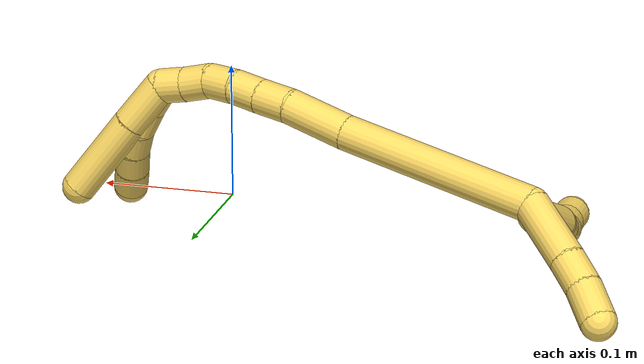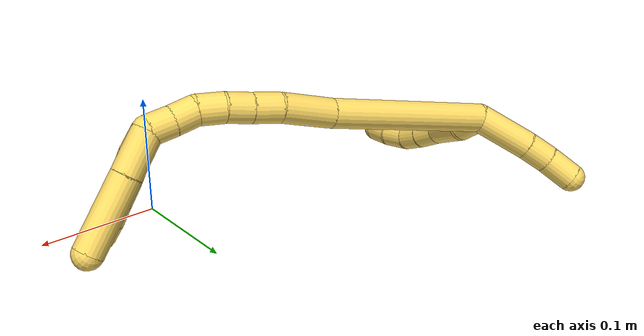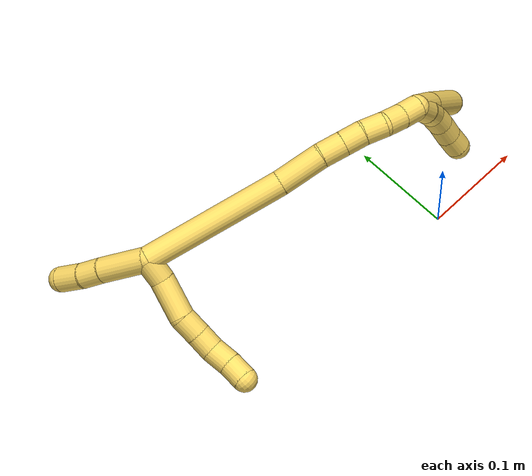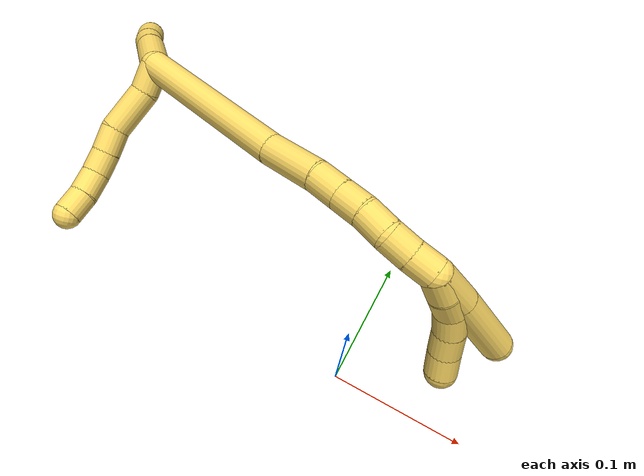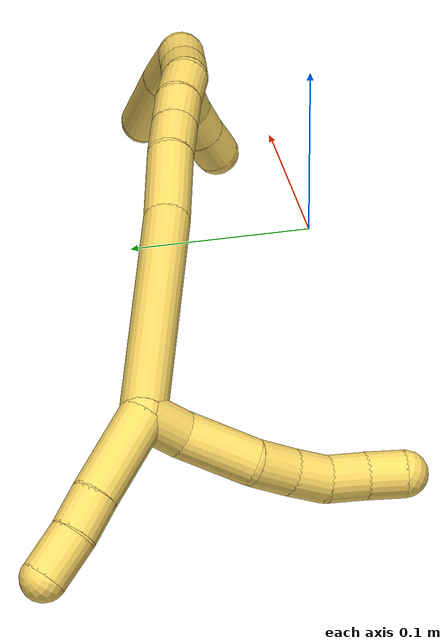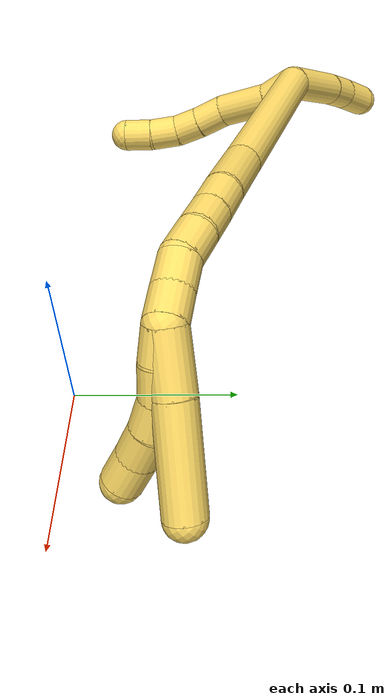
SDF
<sdf version="1.7">
 <world name="default">
  <model name="5">
   <static>0</static>
   <link name="5">
    <collision name="collision-cylinder-e_1_2_8">
     <pose>-0.001639 0.000311 -0.012149 -3.11599 -0.134028 2.76465</pose>
     <geometry><cylinder><radius>0.0125</radius><length>0.024526</length></cylinder></geometry>
     <surface>
      <friction><ode><mu>1.16</mu><mu2>1.16</mu2><slip1>0</slip1><slip2>0</slip2></ode></friction>
      <contact><ode><kp>1e+06</kp><kd>1</kd><max_vel>0</max_vel><min_depth>0.001</min_depth></ode></contact>
     </surface>
    </collision>
    <visual name="visual-cylinder-e_1_2_8">
     <pose>-0.001639 0.000311 -0.012149 -3.11599 -0.134028 2.76465</pose>
     <geometry><cylinder><radius>0.0125</radius><length>0.024526</length></cylinder></geometry>
     <material><ambient>1 0.858824 0.4 1</ambient></material>
    </visual>
    <collision name="collision-cylinder-e_2_8_9">
     <pose>-0.011551 -0.000785 -0.04265 3.06508 -0.422437 -2.78829</pose>
     <geometry><cylinder><radius>0.0125</radius><length>0.040359</length></cylinder></geometry>
     <surface>
      <friction><ode><mu>1.16</mu><mu2>1.16</mu2><slip1>0</slip1><slip2>0</slip2></ode></friction>
      <contact><ode><kp>1e+06</kp><kd>1</kd><max_vel>0</max_vel><min_depth>0.001</min_depth></ode></contact>
     </surface>
    </collision>
    <visual name="visual-cylinder-e_2_8_9">
     <pose>-0.011551 -0.000785 -0.04265 3.06508 -0.422437 -2.78829</pose>
     <geometry><cylinder><radius>0.0125</radius><length>0.040359</length></cylinder></geometry>
     <material><ambient>1 0.858824 0.4 1</ambient></material>
    </visual>
    <collision name="collision-cylinder-e_3_9_10">
     <pose>-0.021285 -0.003957 -0.071893 2.98088 -0.131655 -1.37195</pose>
     <geometry><cylinder><radius>0.0125</radius><length>0.022258</length></cylinder></geometry>
     <surface>
      <friction><ode><mu>1.16</mu><mu2>1.16</mu2><slip1>0</slip1><slip2>0</slip2></ode></friction>
      <contact><ode><kp>1e+06</kp><kd>1</kd><max_vel>0</max_vel><min_depth>0.001</min_depth></ode></contact>
     </surface>
    </collision>
    <visual name="visual-cylinder-e_3_9_10">
     <pose>-0.021285 -0.003957 -0.071893 2.98088 -0.131655 -1.37195</pose>
     <geometry><cylinder><radius>0.0125</radius><length>0.022258</length></cylinder></geometry>
     <material><ambient>1 0.858824 0.4 1</ambient></material>
    </visual>
    <collision name="collision-cylinder-e_4_10_11">
     <pose>-0.02472 -0.007824 -0.092489 2.92837 -0.196197 -1.48712</pose>
     <geometry><cylinder><radius>0.0125</radius><length>0.020249</length></cylinder></geometry>
     <surface>
      <friction><ode><mu>1.16</mu><mu2>1.16</mu2><slip1>0</slip1><slip2>0</slip2></ode></friction>
      <contact><ode><kp>1e+06</kp><kd>1</kd><max_vel>0</max_vel><min_depth>0.001</min_depth></ode></contact>
     </surface>
    </collision>
    <visual name="visual-cylinder-e_4_10_11">
     <pose>-0.02472 -0.007824 -0.092489 2.92837 -0.196197 -1.48712</pose>
     <geometry><cylinder><radius>0.0125</radius><length>0.020249</length></cylinder></geometry>
     <material><ambient>1 0.858824 0.4 1</ambient></material>
    </visual>
    <collision name="collision-cylinder-e_5_11_12">
     <pose>-0.029106 -0.015103 -0.111445 2.63136 -0.223784 -0.813602</pose>
     <geometry><cylinder><radius>0.0125</radius><length>0.021744</length></cylinder></geometry>
     <surface>
      <friction><ode><mu>1.16</mu><mu2>1.16</mu2><slip1>0</slip1><slip2>0</slip2></ode></friction>
      <contact><ode><kp>1e+06</kp><kd>1</kd><max_vel>0</max_vel><min_depth>0.001</min_depth></ode></contact>
     </surface>
    </collision>
    <visual name="visual-cylinder-e_5_11_12">
     <pose>-0.029106 -0.015103 -0.111445 2.63136 -0.223784 -0.813602</pose>
     <geometry><cylinder><radius>0.0125</radius><length>0.021744</length></cylinder></geometry>
     <material><ambient>1 0.858824 0.4 1</ambient></material>
    </visual>
    <collision name="collision-cylinder-e_6_12_6">
     <pose>-0.035355 -0.02524 -0.129032 2.60487 -0.376629 -1.21202</pose>
     <geometry><cylinder><radius>0.0125</radius><length>0.020863</length></cylinder></geometry>
     <surface>
      <friction><ode><mu>1.16</mu><mu2>1.16</mu2><slip1>0</slip1><slip2>0</slip2></ode></friction>
      <contact><ode><kp>1e+06</kp><kd>1</kd><max_vel>0</max_vel><min_depth>0.001</min_depth></ode></contact>
     </surface>
    </collision>
    <visual name="visual-cylinder-e_6_12_6">
     <pose>-0.035355 -0.02524 -0.129032 2.60487 -0.376629 -1.21202</pose>
     <geometry><cylinder><radius>0.0125</radius><length>0.020863</length></cylinder></geometry>
     <material><ambient>1 0.858824 0.4 1</ambient></material>
    </visual>
    <collision name="collision-cylinder-e_1_2_13">
     <pose>-0.005714 0.023318 0.006621 -1.29413 -0.231513 0.175263</pose>
     <geometry><cylinder><radius>0.0125</radius><length>0.049809</length></cylinder></geometry>
     <surface>
      <friction><ode><mu>1.16</mu><mu2>1.16</mu2><slip1>0</slip1><slip2>0</slip2></ode></friction>
      <contact><ode><kp>1e+06</kp><kd>1</kd><max_vel>0</max_vel><min_depth>0.001</min_depth></ode></contact>
     </surface>
    </collision>
    <visual name="visual-cylinder-e_1_2_13">
     <pose>-0.005714 0.023318 0.006621 -1.29413 -0.231513 0.175263</pose>
     <geometry><cylinder><radius>0.0125</radius><length>0.049809</length></cylinder></geometry>
     <material><ambient>1 0.858824 0.4 1</ambient></material>
    </visual>
    <collision name="collision-cylinder-e_2_13_14">
     <pose>-0.013831 0.057636 0.015617 -1.35817 -0.210365 0.170015</pose>
     <geometry><cylinder><radius>0.0125</radius><length>0.023013</length></cylinder></geometry>
     <surface>
      <friction><ode><mu>1.16</mu><mu2>1.16</mu2><slip1>0</slip1><slip2>0</slip2></ode></friction>
      <contact><ode><kp>1e+06</kp><kd>1</kd><max_vel>0</max_vel><min_depth>0.001</min_depth></ode></contact>
     </surface>
    </collision>
    <visual name="visual-cylinder-e_2_13_14">
     <pose>-0.013831 0.057636 0.015617 -1.35817 -0.210365 0.170015</pose>
     <geometry><cylinder><radius>0.0125</radius><length>0.023013</length></cylinder></geometry>
     <material><ambient>1 0.858824 0.4 1</ambient></material>
    </visual>
    <collision name="collision-cylinder-e_3_14_5">
     <pose>-0.017346 0.081808 0.021137 -1.33644 -0.081903 0.064664</pose>
     <geometry><cylinder><radius>0.0125</radius><length>0.027178</length></cylinder></geometry>
     <surface>
      <friction><ode><mu>1.16</mu><mu2>1.16</mu2><slip1>0</slip1><slip2>0</slip2></ode></friction>
      <contact><ode><kp>1e+06</kp><kd>1</kd><max_vel>0</max_vel><min_depth>0.001</min_depth></ode></contact>
     </surface>
    </collision>
    <visual name="visual-cylinder-e_3_14_5">
     <pose>-0.017346 0.081808 0.021137 -1.33644 -0.081903 0.064664</pose>
     <geometry><cylinder><radius>0.0125</radius><length>0.027178</length></cylinder></geometry>
     <material><ambient>1 0.858824 0.4 1</ambient></material>
    </visual>
    <collision name="collision-cylinder-e_1_2_15">
     <pose>0.052742 -0.046862 -0.017292 1.92429 0.812577 1.10613</pose>
     <geometry><cylinder><radius>0.0125</radius><length>0.145282</length></cylinder></geometry>
     <surface>
      <friction><ode><mu>1.16</mu><mu2>1.16</mu2><slip1>0</slip1><slip2>0</slip2></ode></friction>
      <contact><ode><kp>1e+06</kp><kd>1</kd><max_vel>0</max_vel><min_depth>0.001</min_depth></ode></contact>
     </surface>
    </collision>
    <visual name="visual-cylinder-e_1_2_15">
     <pose>0.052742 -0.046862 -0.017292 1.92429 0.812577 1.10613</pose>
     <geometry><cylinder><radius>0.0125</radius><length>0.145282</length></cylinder></geometry>
     <material><ambient>1 0.858824 0.4 1</ambient></material>
    </visual>
    <collision name="collision-cylinder-e_2_15_16">
     <pose>0.122029 -0.109514 -0.038081 1.78873 0.796745 0.965761</pose>
     <geometry><cylinder><radius>0.0125</radius><length>0.046274</length></cylinder></geometry>
     <surface>
      <friction><ode><mu>1.16</mu><mu2>1.16</mu2><slip1>0</slip1><slip2>0</slip2></ode></friction>
      <contact><ode><kp>1e+06</kp><kd>1</kd><max_vel>0</max_vel><min_depth>0.001</min_depth></ode></contact>
     </surface>
    </collision>
    <visual name="visual-cylinder-e_2_15_16">
     <pose>0.122029 -0.109514 -0.038081 1.78873 0.796745 0.965761</pose>
     <geometry><cylinder><radius>0.0125</radius><length>0.046274</length></cylinder></geometry>
     <material><ambient>1 0.858824 0.4 1</ambient></material>
    </visual>
    <collision name="collision-cylinder-e_3_16_17">
     <pose>0.147468 -0.132731 -0.044861 1.98715 0.8309 1.19079</pose>
     <geometry><cylinder><radius>0.0125</radius><length>0.024085</length></cylinder></geometry>
     <surface>
      <friction><ode><mu>1.16</mu><mu2>1.16</mu2><slip1>0</slip1><slip2>0</slip2></ode></friction>
      <contact><ode><kp>1e+06</kp><kd>1</kd><max_vel>0</max_vel><min_depth>0.001</min_depth></ode></contact>
     </surface>
    </collision>
    <visual name="visual-cylinder-e_3_16_17">
     <pose>0.147468 -0.132731 -0.044861 1.98715 0.8309 1.19079</pose>
     <geometry><cylinder><radius>0.0125</radius><length>0.024085</length></cylinder></geometry>
     <material><ambient>1 0.858824 0.4 1</ambient></material>
    </visual>
    <collision name="collision-cylinder-e_4_17_18">
     <pose>0.164186 -0.147041 -0.05097 1.96024 0.810476 1.13829</pose>
     <geometry><cylinder><radius>0.0125</radius><length>0.021594</length></cylinder></geometry>
     <surface>
      <friction><ode><mu>1.16</mu><mu2>1.16</mu2><slip1>0</slip1><slip2>0</slip2></ode></friction>
      <contact><ode><kp>1e+06</kp><kd>1</kd><max_vel>0</max_vel><min_depth>0.001</min_depth></ode></contact>
     </surface>
    </collision>
    <visual name="visual-cylinder-e_4_17_18">
     <pose>0.164186 -0.147041 -0.05097 1.96024 0.810476 1.13829</pose>
     <geometry><cylinder><radius>0.0125</radius><length>0.021594</length></cylinder></geometry>
     <material><ambient>1 0.858824 0.4 1</ambient></material>
    </visual>
    <collision name="collision-cylinder-e_5_18_19">
     <pose>0.180081 -0.160245 -0.058177 2.17699 0.809562 1.37167</pose>
     <geometry><cylinder><radius>0.0125</radius><length>0.022298</length></cylinder></geometry>
     <surface>
      <friction><ode><mu>1.16</mu><mu2>1.16</mu2><slip1>0</slip1><slip2>0</slip2></ode></friction>
      <contact><ode><kp>1e+06</kp><kd>1</kd><max_vel>0</max_vel><min_depth>0.001</min_depth></ode></contact>
     </surface>
    </collision>
    <visual name="visual-cylinder-e_5_18_19">
     <pose>0.180081 -0.160245 -0.058177 2.17699 0.809562 1.37167</pose>
     <geometry><cylinder><radius>0.0125</radius><length>0.022298</length></cylinder></geometry>
     <material><ambient>1 0.858824 0.4 1</ambient></material>
    </visual>
    <collision name="collision-cylinder-e_6_19_20">
     <pose>0.196993 -0.169205 -0.066736 2.578 1.06108 2.22474</pose>
     <geometry><cylinder><radius>0.0125</radius><length>0.020254</length></cylinder></geometry>
     <surface>
      <friction><ode><mu>1.16</mu><mu2>1.16</mu2><slip1>0</slip1><slip2>0</slip2></ode></friction>
      <contact><ode><kp>1e+06</kp><kd>1</kd><max_vel>0</max_vel><min_depth>0.001</min_depth></ode></contact>
     </surface>
    </collision>
    <visual name="visual-cylinder-e_6_19_20">
     <pose>0.196993 -0.169205 -0.066736 2.578 1.06108 2.22474</pose>
     <geometry><cylinder><radius>0.0125</radius><length>0.020254</length></cylinder></geometry>
     <material><ambient>1 0.858824 0.4 1</ambient></material>
    </visual>
    <collision name="collision-cylinder-e_7_20_1">
     <pose>0.214784 -0.174956 -0.074424 2.41662 1.0881 2.02166</pose>
     <geometry><cylinder><radius>0.0125</radius><length>0.020211</length></cylinder></geometry>
     <surface>
      <friction><ode><mu>1.16</mu><mu2>1.16</mu2><slip1>0</slip1><slip2>0</slip2></ode></friction>
      <contact><ode><kp>1e+06</kp><kd>1</kd><max_vel>0</max_vel><min_depth>0.001</min_depth></ode></contact>
     </surface>
    </collision>
    <visual name="visual-cylinder-e_7_20_1">
     <pose>0.214784 -0.174956 -0.074424 2.41662 1.0881 2.02166</pose>
     <geometry><cylinder><radius>0.0125</radius><length>0.020211</length></cylinder></geometry>
     <material><ambient>1 0.858824 0.4 1</ambient></material>
    </visual>
    <collision name="collision-cylinder-e_1_1_21">
     <pose>0.238021 -0.170612 -0.086651 -2.43405 0.894376 -1.82917</pose>
     <geometry><cylinder><radius>0.0125</radius><length>0.03664</length></cylinder></geometry>
     <surface>
      <friction><ode><mu>1.16</mu><mu2>1.16</mu2><slip1>0</slip1><slip2>0</slip2></ode></friction>
      <contact><ode><kp>1e+06</kp><kd>1</kd><max_vel>0</max_vel><min_depth>0.001</min_depth></ode></contact>
     </surface>
    </collision>
    <visual name="visual-cylinder-e_1_1_21">
     <pose>0.238021 -0.170612 -0.086651 -2.43405 0.894376 -1.82917</pose>
     <geometry><cylinder><radius>0.0125</radius><length>0.03664</length></cylinder></geometry>
     <material><ambient>1 0.858824 0.4 1</ambient></material>
    </visual>
    <collision name="collision-cylinder-e_2_21_4">
     <pose>0.276401 -0.150449 -0.11154 -2.4756 0.864158 -1.85453</pose>
     <geometry><cylinder><radius>0.0125</radius><length>0.06336</length></cylinder></geometry>
     <surface>
      <friction><ode><mu>1.16</mu><mu2>1.16</mu2><slip1>0</slip1><slip2>0</slip2></ode></friction>
      <contact><ode><kp>1e+06</kp><kd>1</kd><max_vel>0</max_vel><min_depth>0.001</min_depth></ode></contact>
     </surface>
    </collision>
    <visual name="visual-cylinder-e_2_21_4">
     <pose>0.276401 -0.150449 -0.11154 -2.4756 0.864158 -1.85453</pose>
     <geometry><cylinder><radius>0.0125</radius><length>0.06336</length></cylinder></geometry>
     <material><ambient>1 0.858824 0.4 1</ambient></material>
    </visual>
    <collision name="collision-cylinder-e_1_1_22">
     <pose>0.230043 -0.17445 -0.0848 -2.65673 0.682636 -1.92529</pose>
     <geometry><cylinder><radius>0.0125</radius><length>0.02</length></cylinder></geometry>
     <surface>
      <friction><ode><mu>1.16</mu><mu2>1.16</mu2><slip1>0</slip1><slip2>0</slip2></ode></friction>
      <contact><ode><kp>1e+06</kp><kd>1</kd><max_vel>0</max_vel><min_depth>0.001</min_depth></ode></contact>
     </surface>
    </collision>
    <visual name="visual-cylinder-e_1_1_22">
     <pose>0.230043 -0.17445 -0.0848 -2.65673 0.682636 -1.92529</pose>
     <geometry><cylinder><radius>0.0125</radius><length>0.02</length></cylinder></geometry>
     <material><ambient>1 0.858824 0.4 1</ambient></material>
    </visual>
    <collision name="collision-cylinder-e_2_22_23">
     <pose>0.242426 -0.165967 -0.097943 -2.4822 0.652902 -1.56016</pose>
     <geometry><cylinder><radius>0.0125</radius><length>0.02</length></cylinder></geometry>
     <surface>
      <friction><ode><mu>1.16</mu><mu2>1.16</mu2><slip1>0</slip1><slip2>0</slip2></ode></friction>
      <contact><ode><kp>1e+06</kp><kd>1</kd><max_vel>0</max_vel><min_depth>0.001</min_depth></ode></contact>
     </surface>
    </collision>
    <visual name="visual-cylinder-e_2_22_23">
     <pose>0.242426 -0.165967 -0.097943 -2.4822 0.652902 -1.56016</pose>
     <geometry><cylinder><radius>0.0125</radius><length>0.02</length></cylinder></geometry>
     <material><ambient>1 0.858824 0.4 1</ambient></material>
    </visual>
    <collision name="collision-cylinder-e_3_23_24">
     <pose>0.252252 -0.15722 -0.112639 -2.70961 0.384456 -1.45123</pose>
     <geometry><cylinder><radius>0.0125</radius><length>0.02</length></cylinder></geometry>
     <surface>
      <friction><ode><mu>1.16</mu><mu2>1.16</mu2><slip1>0</slip1><slip2>0</slip2></ode></friction>
      <contact><ode><kp>1e+06</kp><kd>1</kd><max_vel>0</max_vel><min_depth>0.001</min_depth></ode></contact>
     </surface>
    </collision>
    <visual name="visual-cylinder-e_3_23_24">
     <pose>0.252252 -0.15722 -0.112639 -2.70961 0.384456 -1.45123</pose>
     <geometry><cylinder><radius>0.0125</radius><length>0.02</length></cylinder></geometry>
     <material><ambient>1 0.858824 0.4 1</ambient></material>
    </visual>
    <collision name="collision-cylinder-e_4_24_25">
     <pose>0.258397 -0.149587 -0.130013 -2.74485 0.241794 -1.08727</pose>
     <geometry><cylinder><radius>0.0125</radius><length>0.02</length></cylinder></geometry>
     <surface>
      <friction><ode><mu>1.16</mu><mu2>1.16</mu2><slip1>0</slip1><slip2>0</slip2></ode></friction>
      <contact><ode><kp>1e+06</kp><kd>1</kd><max_vel>0</max_vel><min_depth>0.001</min_depth></ode></contact>
     </surface>
    </collision>
    <visual name="visual-cylinder-e_4_24_25">
     <pose>0.258397 -0.149587 -0.130013 -2.74485 0.241794 -1.08727</pose>
     <geometry><cylinder><radius>0.0125</radius><length>0.02</length></cylinder></geometry>
     <material><ambient>1 0.858824 0.4 1</ambient></material>
    </visual>
    <collision name="collision-cylinder-e_5_25_3">
     <pose>0.263243 -0.142746 -0.148157 -2.81733 0.247678 -1.30102</pose>
     <geometry><cylinder><radius>0.0125</radius><length>0.02</length></cylinder></geometry>
     <surface>
      <friction><ode><mu>1.16</mu><mu2>1.16</mu2><slip1>0</slip1><slip2>0</slip2></ode></friction>
      <contact><ode><kp>1e+06</kp><kd>1</kd><max_vel>0</max_vel><min_depth>0.001</min_depth></ode></contact>
     </surface>
    </collision>
    <visual name="visual-cylinder-e_5_25_3">
     <pose>0.263243 -0.142746 -0.148157 -2.81733 0.247678 -1.30102</pose>
     <geometry><cylinder><radius>0.0125</radius><length>0.02</length></cylinder></geometry>
     <material><ambient>1 0.858824 0.4 1</ambient></material>
    </visual>
    <collision name="collision-sphere-3">
     <pose>0.265694 -0.139657 -0.157347 0 -0 0</pose>
     <geometry><sphere><radius>0.0125</radius></sphere></geometry>
     <surface>
      <friction><ode><mu>1.16</mu><mu2>1.16</mu2><slip1>0</slip1><slip2>0</slip2></ode></friction>
      <contact><ode><kp>1e+06</kp><kd>1</kd><max_vel>0</max_vel><min_depth>0.001</min_depth></ode></contact>
     </surface>
    </collision>
    <visual name="visual-sphere-3">
     <pose>0.265694 -0.139657 -0.157347 0 -0 0</pose>
     <geometry><sphere><radius>0.0125</radius></sphere></geometry>
     <material><ambient>1 0.858824 0.4 1</ambient></material>
    </visual>
    <collision name="collision-sphere-25">
     <pose>0.260791 -0.145835 -0.138968 0 -0 0</pose>
     <geometry><sphere><radius>0.0125</radius></sphere></geometry>
     <surface>
      <friction><ode><mu>1.16</mu><mu2>1.16</mu2><slip1>0</slip1><slip2>0</slip2></ode></friction>
      <contact><ode><kp>1e+06</kp><kd>1</kd><max_vel>0</max_vel><min_depth>0.001</min_depth></ode></contact>
     </surface>
    </collision>
    <visual name="visual-sphere-25">
     <pose>0.260791 -0.145835 -0.138968 0 -0 0</pose>
     <geometry><sphere><radius>0.0125</radius></sphere></geometry>
     <material><ambient>1 0.858824 0.4 1</ambient></material>
    </visual>
    <collision name="collision-sphere-24">
     <pose>0.256002 -0.153338 -0.121058 0 -0 0</pose>
     <geometry><sphere><radius>0.0125</radius></sphere></geometry>
     <surface>
      <friction><ode><mu>1.16</mu><mu2>1.16</mu2><slip1>0</slip1><slip2>0</slip2></ode></friction>
      <contact><ode><kp>1e+06</kp><kd>1</kd><max_vel>0</max_vel><min_depth>0.001</min_depth></ode></contact>
     </surface>
    </collision>
    <visual name="visual-sphere-24">
     <pose>0.256002 -0.153338 -0.121058 0 -0 0</pose>
     <geometry><sphere><radius>0.0125</radius></sphere></geometry>
     <material><ambient>1 0.858824 0.4 1</ambient></material>
    </visual>
    <collision name="collision-sphere-23">
     <pose>0.248501 -0.161101 -0.104221 0 -0 0</pose>
     <geometry><sphere><radius>0.0125</radius></sphere></geometry>
     <surface>
      <friction><ode><mu>1.16</mu><mu2>1.16</mu2><slip1>0</slip1><slip2>0</slip2></ode></friction>
      <contact><ode><kp>1e+06</kp><kd>1</kd><max_vel>0</max_vel><min_depth>0.001</min_depth></ode></contact>
     </surface>
    </collision>
    <visual name="visual-sphere-23">
     <pose>0.248501 -0.161101 -0.104221 0 -0 0</pose>
     <geometry><sphere><radius>0.0125</radius></sphere></geometry>
     <material><ambient>1 0.858824 0.4 1</ambient></material>
    </visual>
    <collision name="collision-sphere-22">
     <pose>0.236351 -0.170833 -0.091665 0 -0 0</pose>
     <geometry><sphere><radius>0.0125</radius></sphere></geometry>
     <surface>
      <friction><ode><mu>1.16</mu><mu2>1.16</mu2><slip1>0</slip1><slip2>0</slip2></ode></friction>
      <contact><ode><kp>1e+06</kp><kd>1</kd><max_vel>0</max_vel><min_depth>0.001</min_depth></ode></contact>
     </surface>
    </collision>
    <visual name="visual-sphere-22">
     <pose>0.236351 -0.170833 -0.091665 0 -0 0</pose>
     <geometry><sphere><radius>0.0125</radius></sphere></geometry>
     <material><ambient>1 0.858824 0.4 1</ambient></material>
    </visual>
    <collision name="collision-sphere-4">
     <pose>0.300496 -0.137741 -0.127714 0 -0 0</pose>
     <geometry><sphere><radius>0.0125</radius></sphere></geometry>
     <surface>
      <friction><ode><mu>1.16</mu><mu2>1.16</mu2><slip1>0</slip1><slip2>0</slip2></ode></friction>
      <contact><ode><kp>1e+06</kp><kd>1</kd><max_vel>0</max_vel><min_depth>0.001</min_depth></ode></contact>
     </surface>
    </collision>
    <visual name="visual-sphere-4">
     <pose>0.300496 -0.137741 -0.127714 0 -0 0</pose>
     <geometry><sphere><radius>0.0125</radius></sphere></geometry>
     <material><ambient>1 0.858824 0.4 1</ambient></material>
    </visual>
    <collision name="collision-sphere-21">
     <pose>0.252307 -0.163158 -0.095366 0 -0 0</pose>
     <geometry><sphere><radius>0.0125</radius></sphere></geometry>
     <surface>
      <friction><ode><mu>1.16</mu><mu2>1.16</mu2><slip1>0</slip1><slip2>0</slip2></ode></friction>
      <contact><ode><kp>1e+06</kp><kd>1</kd><max_vel>0</max_vel><min_depth>0.001</min_depth></ode></contact>
     </surface>
    </collision>
    <visual name="visual-sphere-21">
     <pose>0.252307 -0.163158 -0.095366 0 -0 0</pose>
     <geometry><sphere><radius>0.0125</radius></sphere></geometry>
     <material><ambient>1 0.858824 0.4 1</ambient></material>
    </visual>
    <collision name="collision-sphere-1">
     <pose>0.223735 -0.178066 -0.077935 0 -0 0</pose>
     <geometry><sphere><radius>0.0125</radius></sphere></geometry>
     <surface>
      <friction><ode><mu>1.16</mu><mu2>1.16</mu2><slip1>0</slip1><slip2>0</slip2></ode></friction>
      <contact><ode><kp>1e+06</kp><kd>1</kd><max_vel>0</max_vel><min_depth>0.001</min_depth></ode></contact>
     </surface>
    </collision>
    <visual name="visual-sphere-1">
     <pose>0.223735 -0.178066 -0.077935 0 -0 0</pose>
     <geometry><sphere><radius>0.0125</radius></sphere></geometry>
     <material><ambient>1 0.858824 0.4 1</ambient></material>
    </visual>
    <collision name="collision-sphere-12">
     <pose>-0.031519 -0.02028 -0.120695 0 -0 0</pose>
     <geometry><sphere><radius>0.0125</radius></sphere></geometry>
     <surface>
      <friction><ode><mu>1.16</mu><mu2>1.16</mu2><slip1>0</slip1><slip2>0</slip2></ode></friction>
      <contact><ode><kp>1e+06</kp><kd>1</kd><max_vel>0</max_vel><min_depth>0.001</min_depth></ode></contact>
     </surface>
    </collision>
    <visual name="visual-sphere-12">
     <pose>-0.031519 -0.02028 -0.120695 0 -0 0</pose>
     <geometry><sphere><radius>0.0125</radius></sphere></geometry>
     <material><ambient>1 0.858824 0.4 1</ambient></material>
    </visual>
    <collision name="collision-sphere-11">
     <pose>-0.026693 -0.009925 -0.102194 0 -0 0</pose>
     <geometry><sphere><radius>0.0125</radius></sphere></geometry>
     <surface>
      <friction><ode><mu>1.16</mu><mu2>1.16</mu2><slip1>0</slip1><slip2>0</slip2></ode></friction>
      <contact><ode><kp>1e+06</kp><kd>1</kd><max_vel>0</max_vel><min_depth>0.001</min_depth></ode></contact>
     </surface>
    </collision>
    <visual name="visual-sphere-11">
     <pose>-0.026693 -0.009925 -0.102194 0 -0 0</pose>
     <geometry><sphere><radius>0.0125</radius></sphere></geometry>
     <material><ambient>1 0.858824 0.4 1</ambient></material>
    </visual>
    <collision name="collision-sphere-10">
     <pose>-0.022746 -0.005723 -0.082783 0 -0 0</pose>
     <geometry><sphere><radius>0.0125</radius></sphere></geometry>
     <surface>
      <friction><ode><mu>1.16</mu><mu2>1.16</mu2><slip1>0</slip1><slip2>0</slip2></ode></friction>
      <contact><ode><kp>1e+06</kp><kd>1</kd><max_vel>0</max_vel><min_depth>0.001</min_depth></ode></contact>
     </surface>
    </collision>
    <visual name="visual-sphere-10">
     <pose>-0.022746 -0.005723 -0.082783 0 -0 0</pose>
     <geometry><sphere><radius>0.0125</radius></sphere></geometry>
     <material><ambient>1 0.858824 0.4 1</ambient></material>
    </visual>
    <collision name="collision-sphere-9">
     <pose>-0.019824 -0.002192 -0.061002 0 -0 0</pose>
     <geometry><sphere><radius>0.0125</radius></sphere></geometry>
     <surface>
      <friction><ode><mu>1.16</mu><mu2>1.16</mu2><slip1>0</slip1><slip2>0</slip2></ode></friction>
      <contact><ode><kp>1e+06</kp><kd>1</kd><max_vel>0</max_vel><min_depth>0.001</min_depth></ode></contact>
     </surface>
    </collision>
    <visual name="visual-sphere-9">
     <pose>-0.019824 -0.002192 -0.061002 0 -0 0</pose>
     <geometry><sphere><radius>0.0125</radius></sphere></geometry>
     <material><ambient>1 0.858824 0.4 1</ambient></material>
    </visual>
    <collision name="collision-sphere-2">
     <geometry><sphere><radius>0.0125</radius></sphere></geometry>
     <surface>
      <friction><ode><mu>1.16</mu><mu2>1.16</mu2><slip1>0</slip1><slip2>0</slip2></ode></friction>
      <contact><ode><kp>1e+06</kp><kd>1</kd><max_vel>0</max_vel><min_depth>0.001</min_depth></ode></contact>
     </surface>
    </collision>
    <visual name="visual-sphere-2">
     <geometry><sphere><radius>0.0125</radius></sphere></geometry>
     <material><ambient>1 0.858824 0.4 1</ambient></material>
    </visual>
    <collision name="collision-sphere-19">
     <pose>0.188153 -0.166566 -0.062559 0 -0 0</pose>
     <geometry><sphere><radius>0.0125</radius></sphere></geometry>
     <surface>
      <friction><ode><mu>1.16</mu><mu2>1.16</mu2><slip1>0</slip1><slip2>0</slip2></ode></friction>
      <contact><ode><kp>1e+06</kp><kd>1</kd><max_vel>0</max_vel><min_depth>0.001</min_depth></ode></contact>
     </surface>
    </collision>
    <visual name="visual-sphere-19">
     <pose>0.188153 -0.166566 -0.062559 0 -0 0</pose>
     <geometry><sphere><radius>0.0125</radius></sphere></geometry>
     <material><ambient>1 0.858824 0.4 1</ambient></material>
    </visual>
    <collision name="collision-sphere-8">
     <pose>-0.003277 0.000622 -0.024298 0 -0 0</pose>
     <geometry><sphere><radius>0.0125</radius></sphere></geometry>
     <surface>
      <friction><ode><mu>1.16</mu><mu2>1.16</mu2><slip1>0</slip1><slip2>0</slip2></ode></friction>
      <contact><ode><kp>1e+06</kp><kd>1</kd><max_vel>0</max_vel><min_depth>0.001</min_depth></ode></contact>
     </surface>
    </collision>
    <visual name="visual-sphere-8">
     <pose>-0.003277 0.000622 -0.024298 0 -0 0</pose>
     <geometry><sphere><radius>0.0125</radius></sphere></geometry>
     <material><ambient>1 0.858824 0.4 1</ambient></material>
    </visual>
    <collision name="collision-sphere-6">
     <pose>-0.039192 -0.0302 -0.137368 0 -0 0</pose>
     <geometry><sphere><radius>0.0125</radius></sphere></geometry>
     <surface>
      <friction><ode><mu>1.16</mu><mu2>1.16</mu2><slip1>0</slip1><slip2>0</slip2></ode></friction>
      <contact><ode><kp>1e+06</kp><kd>1</kd><max_vel>0</max_vel><min_depth>0.001</min_depth></ode></contact>
     </surface>
    </collision>
    <visual name="visual-sphere-6">
     <pose>-0.039192 -0.0302 -0.137368 0 -0 0</pose>
     <geometry><sphere><radius>0.0125</radius></sphere></geometry>
     <material><ambient>1 0.858824 0.4 1</ambient></material>
    </visual>
    <collision name="collision-sphere-13">
     <pose>-0.011429 0.046636 0.013242 0 -0 0</pose>
     <geometry><sphere><radius>0.0125</radius></sphere></geometry>
     <surface>
      <friction><ode><mu>1.16</mu><mu2>1.16</mu2><slip1>0</slip1><slip2>0</slip2></ode></friction>
      <contact><ode><kp>1e+06</kp><kd>1</kd><max_vel>0</max_vel><min_depth>0.001</min_depth></ode></contact>
     </surface>
    </collision>
    <visual name="visual-sphere-13">
     <pose>-0.011429 0.046636 0.013242 0 -0 0</pose>
     <geometry><sphere><radius>0.0125</radius></sphere></geometry>
     <material><ambient>1 0.858824 0.4 1</ambient></material>
    </visual>
    <collision name="collision-sphere-14">
     <pose>-0.016234 0.068635 0.017991 0 -0 0</pose>
     <geometry><sphere><radius>0.0125</radius></sphere></geometry>
     <surface>
      <friction><ode><mu>1.16</mu><mu2>1.16</mu2><slip1>0</slip1><slip2>0</slip2></ode></friction>
      <contact><ode><kp>1e+06</kp><kd>1</kd><max_vel>0</max_vel><min_depth>0.001</min_depth></ode></contact>
     </surface>
    </collision>
    <visual name="visual-sphere-14">
     <pose>-0.016234 0.068635 0.017991 0 -0 0</pose>
     <geometry><sphere><radius>0.0125</radius></sphere></geometry>
     <material><ambient>1 0.858824 0.4 1</ambient></material>
    </visual>
    <collision name="collision-sphere-5">
     <pose>-0.018458 0.094982 0.024282 0 -0 0</pose>
     <geometry><sphere><radius>0.0125</radius></sphere></geometry>
     <surface>
      <friction><ode><mu>1.16</mu><mu2>1.16</mu2><slip1>0</slip1><slip2>0</slip2></ode></friction>
      <contact><ode><kp>1e+06</kp><kd>1</kd><max_vel>0</max_vel><min_depth>0.001</min_depth></ode></contact>
     </surface>
    </collision>
    <visual name="visual-sphere-5">
     <pose>-0.018458 0.094982 0.024282 0 -0 0</pose>
     <geometry><sphere><radius>0.0125</radius></sphere></geometry>
     <material><ambient>1 0.858824 0.4 1</ambient></material>
    </visual>
    <collision name="collision-sphere-15">
     <pose>0.105484 -0.093723 -0.034583 0 -0 0</pose>
     <geometry><sphere><radius>0.0125</radius></sphere></geometry>
     <surface>
      <friction><ode><mu>1.16</mu><mu2>1.16</mu2><slip1>0</slip1><slip2>0</slip2></ode></friction>
      <contact><ode><kp>1e+06</kp><kd>1</kd><max_vel>0</max_vel><min_depth>0.001</min_depth></ode></contact>
     </surface>
    </collision>
    <visual name="visual-sphere-15">
     <pose>0.105484 -0.093723 -0.034583 0 -0 0</pose>
     <geometry><sphere><radius>0.0125</radius></sphere></geometry>
     <material><ambient>1 0.858824 0.4 1</ambient></material>
    </visual>
    <collision name="collision-sphere-16">
     <pose>0.138574 -0.125306 -0.041578 0 -0 0</pose>
     <geometry><sphere><radius>0.0125</radius></sphere></geometry>
     <surface>
      <friction><ode><mu>1.16</mu><mu2>1.16</mu2><slip1>0</slip1><slip2>0</slip2></ode></friction>
      <contact><ode><kp>1e+06</kp><kd>1</kd><max_vel>0</max_vel><min_depth>0.001</min_depth></ode></contact>
     </surface>
    </collision>
    <visual name="visual-sphere-16">
     <pose>0.138574 -0.125306 -0.041578 0 -0 0</pose>
     <geometry><sphere><radius>0.0125</radius></sphere></geometry>
     <material><ambient>1 0.858824 0.4 1</ambient></material>
    </visual>
    <collision name="collision-sphere-17">
     <pose>0.156362 -0.140157 -0.048145 0 -0 0</pose>
     <geometry><sphere><radius>0.0125</radius></sphere></geometry>
     <surface>
      <friction><ode><mu>1.16</mu><mu2>1.16</mu2><slip1>0</slip1><slip2>0</slip2></ode></friction>
      <contact><ode><kp>1e+06</kp><kd>1</kd><max_vel>0</max_vel><min_depth>0.001</min_depth></ode></contact>
     </surface>
    </collision>
    <visual name="visual-sphere-17">
     <pose>0.156362 -0.140157 -0.048145 0 -0 0</pose>
     <geometry><sphere><radius>0.0125</radius></sphere></geometry>
     <material><ambient>1 0.858824 0.4 1</ambient></material>
    </visual>
    <collision name="collision-sphere-18">
     <pose>0.172009 -0.153924 -0.053795 0 -0 0</pose>
     <geometry><sphere><radius>0.0125</radius></sphere></geometry>
     <surface>
      <friction><ode><mu>1.16</mu><mu2>1.16</mu2><slip1>0</slip1><slip2>0</slip2></ode></friction>
      <contact><ode><kp>1e+06</kp><kd>1</kd><max_vel>0</max_vel><min_depth>0.001</min_depth></ode></contact>
     </surface>
    </collision>
    <visual name="visual-sphere-18">
     <pose>0.172009 -0.153924 -0.053795 0 -0 0</pose>
     <geometry><sphere><radius>0.0125</radius></sphere></geometry>
     <material><ambient>1 0.858824 0.4 1</ambient></material>
    </visual>
    <collision name="collision-sphere-20">
     <pose>0.205833 -0.171845 -0.070913 0 -0 0</pose>
     <geometry><sphere><radius>0.0125</radius></sphere></geometry>
     <surface>
      <friction><ode><mu>1.16</mu><mu2>1.16</mu2><slip1>0</slip1><slip2>0</slip2></ode></friction>
      <contact><ode><kp>1e+06</kp><kd>1</kd><max_vel>0</max_vel><min_depth>0.001</min_depth></ode></contact>
     </surface>
    </collision>
    <visual name="visual-sphere-20">
     <pose>0.205833 -0.171845 -0.070913 0 -0 0</pose>
     <geometry><sphere><radius>0.0125</radius></sphere></geometry>
     <material><ambient>1 0.858824 0.4 1</ambient></material>
    </visual>
    <inertial>
     <pose>0.106651 -0.075709 -0.055554 0 -0 0</pose>
     <mass>0.75</mass>
     <inertia><ixx>0.000256</ixx><ixy>0</ixy><ixz>0</ixz><iyy>0.0003</iyy><iyz>0</iyz><izz>-9.4e-05</izz></inertia>
    </inertial>
   </link>
   <pose>-0.251172 0.143767 0.064918 -0.886727 0.226301 0.356775</pose>
  </model>
 </world>
</sdf>
